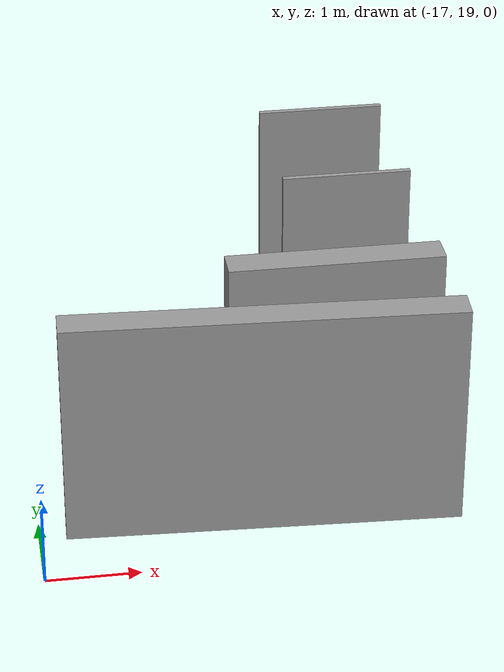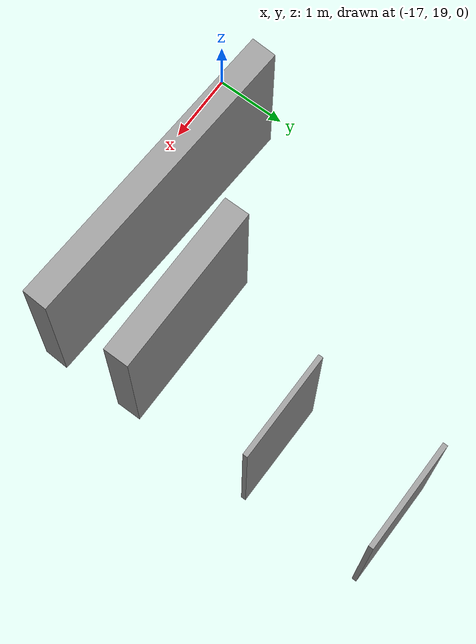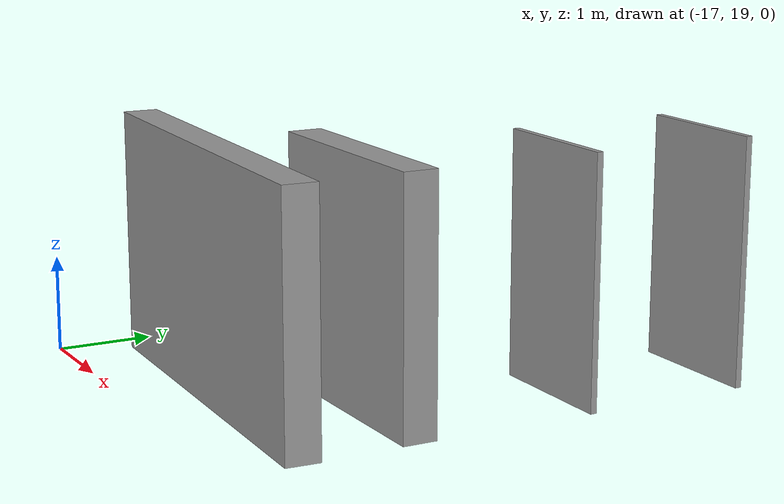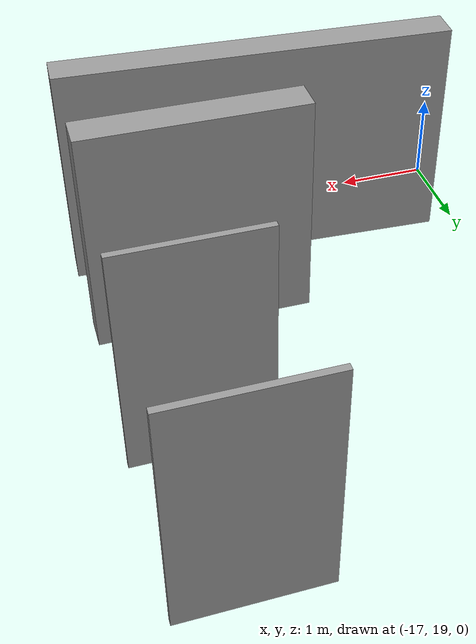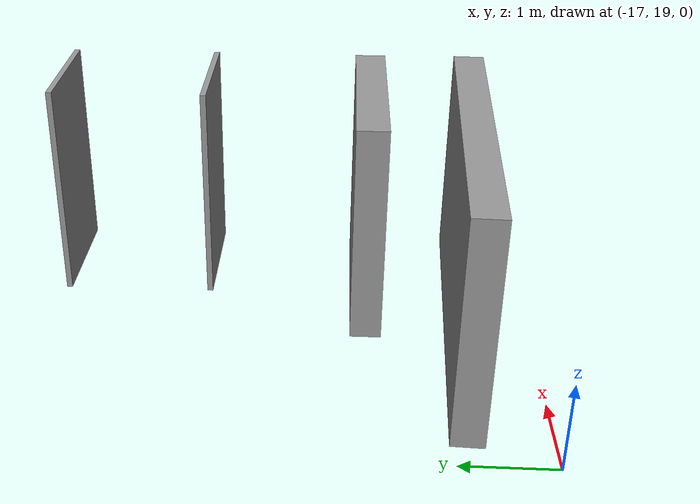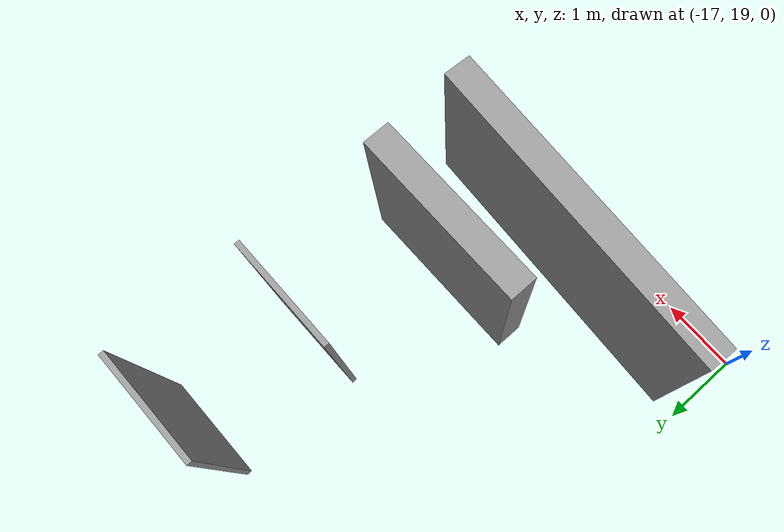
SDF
<sdf version="1.7">
 <world name="default">
  <model name="unit_box_clone_clone_0_clone">
   <pose>-13.2323 22.7198 1.26094 8e-06 3e-06 0.000662</pose>
   <link name="link">
    <inertial>
     <mass>1</mass>
     <inertia>
      <ixx>0.166667</ixx>
      <ixy>0</ixy>
      <ixz>0</ixz>
      <iyy>0.166667</iyy>
      <iyz>0</iyz>
      <izz>0.166667</izz>
     </inertia>
    </inertial>
    <collision name="collision"><geometry><box><size>1.45302 0.065809 2.52188</size></box></geometry></collision>
    <visual name="visual">
     <geometry><box><size>1.45302 0.065809 2.52188</size></box></geometry>
     <material>
      <script><name>Gazebo/Grey</name><uri>file://media/materials/scripts/gazebo.material</uri></script>
     </material>
    </visual>
   </link>
  </model>
  <model name="unit_box_clone_clone_0_clone_clone_1">
   <pose>-13.2378 24.4436 1.26094 -1e-06 3e-06 0.000667</pose>
   <link name="link">
    <inertial>
     <mass>1</mass>
     <inertia>
      <ixx>0.166667</ixx>
      <ixy>0</ixy>
      <ixz>0</ixz>
      <iyy>0.166667</iyy>
      <iyz>0</iyz>
      <izz>0.166667</izz>
     </inertia>
    </inertial>
    <collision name="collision"><geometry><box><size>1.45302 0.065809 2.52188</size></box></geometry></collision>
    <visual name="visual">
     <geometry><box><size>1.45302 0.065809 2.52188</size></box></geometry>
     <material>
      <script><name>Gazebo/Grey</name><uri>file://media/materials/scripts/gazebo.material</uri></script>
     </material>
    </visual>
   </link>
  </model>
  <model name="unit_box_clone_clone_0_clone_clone_2">
   <pose>-13.694 20.8525 1.26094 0 -1e-06 0.000652</pose>
   <link name="link">
    <inertial>
     <mass>1</mass>
     <inertia>
      <ixx>0.166667</ixx>
      <ixy>0</ixy>
      <ixz>0</ixz>
      <iyy>0.166667</iyy>
      <iyz>0</iyz>
      <izz>0.166667</izz>
     </inertia>
    </inertial>
    <collision name="collision"><geometry><box><size>2.32458 0.352126 2.52188</size></box></geometry></collision>
    <visual name="visual">
     <geometry><box><size>2.32458 0.352126 2.52188</size></box></geometry>
     <material>
      <script><name>Gazebo/Grey</name><uri>file://media/materials/scripts/gazebo.material</uri></script>
     </material>
    </visual>
   </link>
  </model>
  <model name="unit_box_clone_clone_0_clone_clone_2_clone_0">
   <pose>-14.6158 19.7707 1.26069 7e-06 -0.000118 -0.047546</pose>
   <link name="link">
    <inertial>
     <mass>1</mass>
     <inertia>
      <ixx>0.166667</ixx>
      <ixy>0</ixy>
      <ixz>0</ixz>
      <iyy>0.166667</iyy>
      <iyz>0</iyz>
      <izz>0.166667</izz>
     </inertia>
    </inertial>
    <collision name="collision"><geometry><box><size>4.20858 0.352126 2.52188</size></box></geometry></collision>
    <visual name="visual">
     <geometry><box><size>4.20858 0.352126 2.52188</size></box></geometry>
     <material>
      <script><name>Gazebo/Grey</name><uri>file://media/materials/scripts/gazebo.material</uri></script>
     </material>
    </visual>
   </link>
  </model>
 </world>
</sdf>
